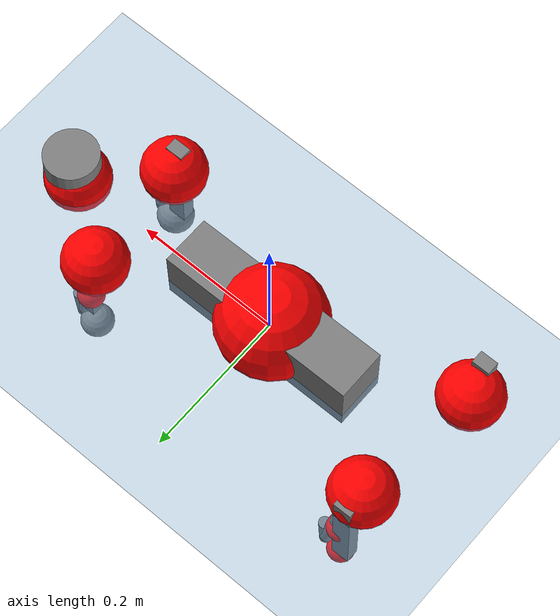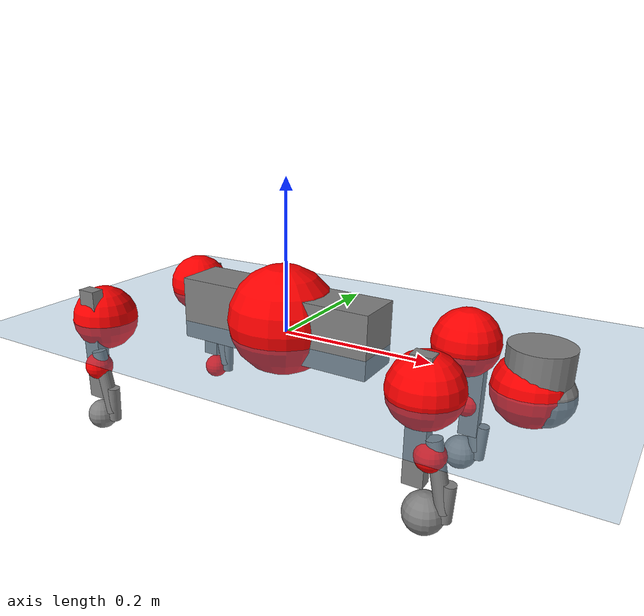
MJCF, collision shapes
<mujoco model="go2">
  <compiler angle="radian" assetdir="assets" balanceinertia="true" inertiafromgeom="false"/>

  <option timestep="0.005" density="1.2" viscosity="2e-05"/>

  <size nkey="1"/>

  <visual>
    <quality shadowsize="8192"/>
    <map shadowclip="0.5"/>
  </visual>

  <default>
    <default class="/">
      <geom contype="0" conaffinity="0" group="1" solref="-1000 -80"/>
      <site size="0.01 0.005 0.005" group="5"/>
      <general forcelimited="true" biastype="affine" gainprm="20" biasprm="0 -20 -0.5"/>
      <default class="go2">
        <joint armature="0.01" damping="0.01" frictionloss="0.2"/>
        <geom condim="1" margin="0.001"/>
        <default class="visual">
          <geom type="mesh" group="2"/>
        </default>
        <default class="collision">
          <geom group="3"/>
          <default class="foot">
            <geom size="0.022 0 0" condim="6" priority="1" friction="0.8 0.02 0.01" solimp="0.015 1 0.022"/>
          </default>
        </default>
        <default class="reward_collision_sphere">
          <geom group="5" rgba="1 0 0 1"/>
        </default>
      </default>
    </default>
  </default>

  <asset>
    <texture type="skybox" colorspace="auto" name="//unnamed_texture_0" builtin="gradient" rgb1="0.95 0.95 0.95" rgb2="0.95 0.95 0.95" width="100" height="600"/>
    <texture type="2d" colorspace="auto" name="texplane" builtin="checker" rgb1="0.345 0.575 0.748" rgb2="0.345 0.575 0.748" markrgb="1 1 1" width="512" height="512"/>
    <material name="MatPlane" class="/" texture="texplane" texuniform="true" texrepeat="2 2" specular="0.9"/>
    <material name="metal" class="/" rgba="0.9 0.95 0.95 1"/>
    <material name="black" class="/" rgba="0 0 0 1"/>
    <material name="white" class="/"/>
    <material name="gray" class="/" rgba="0.671705 0.692426 0.77427 1"/>
    <mesh name="base_0" class="/" file="base_0.obj"/>
    <mesh name="base_1" class="/" file="base_1.obj"/>
    <mesh name="base_2" class="/" file="base_2.obj"/>
    <mesh name="base_3" class="/" file="base_3.obj"/>
    <mesh name="base_4" class="/" file="base_4.obj"/>
    <mesh name="hip_0" class="/" file="hip_0.obj"/>
    <mesh name="hip_1" class="/" file="hip_1.obj"/>
    <mesh name="thigh_0" class="/" file="thigh_0.obj"/>
    <mesh name="thigh_1" class="/" file="thigh_1.obj"/>
    <mesh name="thigh_mirror_0" class="/" file="thigh_mirror_0.obj"/>
    <mesh name="thigh_mirror_1" class="/" file="thigh_mirror_1.obj"/>
    <mesh name="calf_0" class="/" file="calf_0.obj"/>
    <mesh name="calf_1" class="/" file="calf_1.obj"/>
    <mesh name="calf_mirror_0" class="/" file="calf_mirror_0.obj"/>
    <mesh name="calf_mirror_1" class="/" file="calf_mirror_1.obj"/>
    <mesh name="foot" class="/" file="foot.obj"/>
  </asset>

  <worldbody>
    <geom name="floor" class="/" size="100 100 0.125" type="plane" group="0" material="MatPlane"/>
    <light name="toplight_shadow" class="/" pos="0 0 5" dir="0.0990148 0.0990148 -0.990148" type="directional" ambient="0.04 0.04 0.04" diffuse="0.55 0.55 0.55" specular="0.12 0.12 0.12"/>
    <light name="toplight_fill" class="/" pos="0 0 5" dir="0.0990148 0.0990148 -0.990148" type="directional" castshadow="false" ambient="0.04 0.04 0.04" diffuse="0.3 0.3 0.3" specular="0.08 0.08 0.08"/>
    <body name="trunk" childclass="go2" pos="-0.00423594 -0.000822257 0.0166443" quat="0.999969 0.00368747 0.00683539 0.00083752">
      <inertial pos="0.0206931 -0.0137845 0.00141365" quat="0.0599391 0.692499 -0.039366 0.717846" mass="2.45583" diaginertia="0.170328 0.0146957 9.09059e-05"/>
      <joint name="//unnamed_joint_0" type="free" armature="0" damping="0" frictionloss="0"/>
      <geom name="//unnamed_geom_1" class="visual" material="black" mesh="base_0"/>
      <geom name="//unnamed_geom_2" class="visual" material="black" mesh="base_1"/>
      <geom name="//unnamed_geom_3" class="visual" material="black" mesh="base_2"/>
      <geom name="//unnamed_geom_4" class="visual" material="white" mesh="base_3"/>
      <geom name="//unnamed_geom_5" class="visual" material="gray" mesh="base_4"/>
      <geom name="trunk_1" class="collision" size="0.137627 0.0342056 0.0417052" type="box"/>
      <geom name="trunk_2" class="collision" size="0.0365835 0.0329251" pos="0.325207 0 0.0034513" type="cylinder"/>
      <geom name="trunk_3" class="collision" size="0.0343885" pos="0.334335 0 -0.0207078"/>
      <geom name="//unnamed_geom_9" class="reward_collision_sphere" size="0.073167"/>
      <geom name="//unnamed_geom_10" class="reward_collision_sphere" size="0.0439002" pos="0.319501 0 -0.0155309"/>
      <site name="imu" pos="-0.0560209 -0.0534725 0.0806374" size="0.0073167"/>
      <camera name="track" pos="0 -1.41761 0" quat="0.707107 0.707107 0 0" mode="trackcom"/>
      <camera name="ego_camera" pos="0.356016 0 0.0155309" quat="-0.5 -0.5 0.5 0.5"/>
      <body name="FL_hip" pos="0.22118 0.0253018 -0.00833286" quat="0.999999 0.000213672 0.000926089 0.00101779">
        <inertial pos="0.00892979 0.000991478 0.0161508" quat="0.442902 0.557628 0.487558 0.50515" mass="0.299637" diaginertia="0.00163057 0.000131024 2.63764e-06"/>
        <joint name="FL_hip_joint" pos="0 0 0" axis="0.997406 -0.0436851 0.0572105" stiffness="0.0626902" range="-1.02312 0.844882" armature="0.00763848" damping="0.0712292" frictionloss="0.0729402"/>
        <geom name="//unnamed_geom_11" class="visual" material="metal" mesh="hip_0"/>
        <geom name="//unnamed_geom_12" class="visual" material="gray" mesh="hip_1"/>
        <geom name="//unnamed_geom_13" class="collision" size="0.0336568 0.0146334" pos="0 0.0567043 0" quat="0.707107 0.707107 0 0" type="cylinder"/>
        <geom name="//unnamed_geom_14" class="reward_collision_sphere" size="0.0439002" pos="0 0.0496162 0"/>
        <body name="FL_thigh" pos="0.0135242 0.0587266 -0.0130481" quat="1 0.000413255 2.23226e-05 8.77051e-05">
          <inertial pos="-0.00385628 -0.0168271 -0.00844373" quat="0.845013 0.0910278 0.000876717 0.52694" mass="0.492989" diaginertia="0.0126466 0.00124259 5.94702e-06"/>
          <joint name="FL_thigh_joint" pos="0 0 0" axis="-0.00216015 0.999997 0.000709933" stiffness="0.00287971" range="-1.3642 3.52175" armature="0.0112547" damping="0" frictionloss="0.142528"/>
          <geom name="//unnamed_geom_15" class="visual" material="metal" mesh="thigh_0"/>
          <geom name="//unnamed_geom_16" class="visual" material="gray" mesh="thigh_1"/>
          <geom name="//unnamed_geom_17" class="collision" size="0.0779228 0.00896296 0.0124384" pos="0 0 -0.0367564" quat="0.707107 0 0.707107 0" type="box"/>
          <body name="FL_calf" pos="-0.00646556 0.00152864 -0.0733426" quat="1 -0.000588588 0.000218544 -0.000230321">
            <inertial pos="0.0249893 0.0155197 -0.0486931" quat="0.714403 0.00790278 0.0054194 0.699669" mass="0.0958694" diaginertia="0.0035342 0.000256859 2.70626e-07"/>
            <joint name="FL_calf_joint" pos="0 0 0" axis="-0.00940807 0.999687 -0.023173" stiffness="0.00617758" range="-2.37172 -1.05144" armature="0.0103043" damping="0.0361949" frictionloss="0.0216406"/>
            <geom name="//unnamed_geom_18" class="visual" material="gray" mesh="calf_0"/>
            <geom name="//unnamed_geom_19" class="visual" material="black" mesh="calf_1"/>
            <geom name="FL_calf0" class="collision" size="0.00878004 0.0439002" pos="0.00912861 0 -0.0207078" quat="0.994493 0 -0.104807 0" type="cylinder"/>
            <geom name="//unnamed_geom_21" class="collision" size="0.00804837 0.0237793" pos="0.0228215 0 -0.0510793" quat="0.999688 0 0.0249974 0" type="cylinder"/>
            <geom name="//unnamed_geom_22" class="visual" pos="0 0 -0.0735128" quat="1 0 0 0" material="black" mesh="foot"/>
            <geom name="FL_foot" class="foot" size="0.0224322" pos="-0.00228215 0 -0.0735128"/>
            <geom name="//unnamed_geom_24" class="reward_collision_sphere" size="0.0182917"/>
            <geom name="//unnamed_geom_25" class="reward_collision_sphere" size="0.0182917" pos="-0.00228215 0 -0.0735128"/>
            <site name="FL_foot" class="foot" pos="-0.00228215 0 -0.0735128" size="0.0073167"/>
          </body>
        </body>
      </body>
      <body name="FR_hip" pos="0.231088 -0.0325281 -0.00647259" quat="0.999964 0.00839283 0.000236132 -0.00150347">
        <inertial pos="0.00215127 -0.00341313 0.00299999" quat="0.48225 0.575323 0.463267 0.47098" mass="0.22839" diaginertia="0.0017442 0.000118807 2.41759e-06"/>
        <joint name="FR_hip_joint" pos="0 0 0" axis="0.998689 -0.0193232 0.0473935" stiffness="0.0697973" range="-0.716684 1.24794" armature="0.00529933" damping="0.0651492" frictionloss="0.0624221"/>
        <geom name="//unnamed_geom_26" class="visual" pos="0 3.16817e-09 1.35889e-07" quat="4.63268e-05 1 0 0" material="metal" mesh="hip_0"/>
        <geom name="//unnamed_geom_27" class="visual" pos="0 5.13598e-09 -3.36106e-07" quat="4.63268e-05 1 0 0" material="gray" mesh="hip_1"/>
        <geom name="//unnamed_geom_28" class="collision" size="0.0336568 0.0146334" pos="0 -0.0567043 0" quat="0.707107 0.707107 0 0" type="cylinder"/>
        <geom name="//unnamed_geom_29" class="reward_collision_sphere" size="0.0439002" pos="0 -0.0496162 0"/>
        <body name="FR_thigh" pos="-0.0014841 -0.0569625 0.00306541" quat="0.99999 0.00425469 -0.000197837 0.00149695">
          <inertial pos="0.0051847 0.0143806 -0.00390372" quat="0.536379 0.00748381 0.0931367 0.838789" mass="0.376953" diaginertia="0.0111487 0.00122041 3.81573e-06"/>
          <joint name="FR_thigh_joint" pos="0 0 0" axis="4.41939e-05 -1 -0.000491985" range="-3.48969 1.78166" armature="0.0110507" damping="0.0903882" frictionloss="0.243933"/>
          <geom name="//unnamed_geom_30" class="visual" material="metal" mesh="thigh_mirror_0"/>
          <geom name="//unnamed_geom_31" class="visual" material="gray" mesh="thigh_mirror_1"/>
          <geom name="//unnamed_geom_32" class="collision" size="0.0779228 0.00896296 0.0124384" pos="0 0 -0.0367564" quat="0.707107 0 0.707107 0" type="box"/>
          <body name="FR_calf" pos="0.0164105 -0.00324031 -0.0734017" quat="0.999996 -0.000793676 -0.00196133 -0.00187364">
            <inertial pos="0.0136323 0.0157263 -0.0622171" quat="0.673241 -0.0605126 0.0553252 0.734863" mass="0.11955" diaginertia="0.00356403 0.000255112 3.5419e-07"/>
            <joint name="FR_calf_joint" pos="0 0 0" axis="0.000567621 -0.999986 -0.00517716" stiffness="0.0294413" range="0.88032 2.80717" armature="0.00832503" damping="0.0647856" frictionloss="0.216377"/>
            <geom name="//unnamed_geom_33" class="visual" material="gray" mesh="calf_mirror_0"/>
            <geom name="//unnamed_geom_34" class="visual" material="black" mesh="calf_mirror_1"/>
            <geom name="FR_calf0" class="collision" size="0.00951171 0.0439002" pos="0.0114108 0 -0.0207078" quat="0.995004 0 -0.0998334 0" type="cylinder"/>
            <geom name="//unnamed_geom_36" class="collision" size="0.00804837 0.0237793" pos="0.0228215 0 -0.0510793" quat="0.999688 0 0.0249974 0" type="cylinder"/>
            <geom name="//unnamed_geom_37" class="visual" pos="0 0 -0.0735128" quat="1 0 0 0" material="black" mesh="foot"/>
            <geom name="FR_foot" class="foot" size="0.025171" pos="-0.00228215 0 -0.0735128"/>
            <geom name="//unnamed_geom_39" class="reward_collision_sphere" size="0.0182917"/>
            <geom name="//unnamed_geom_40" class="reward_collision_sphere" size="0.0182917" pos="-0.00228215 0 -0.0735128"/>
            <site name="FR_foot" class="foot" pos="-0.00228215 0 -0.0735128" size="0.0073167"/>
          </body>
        </body>
      </body>
      <body name="RL_hip" pos="-0.218576 0.0448899 -0.0121924" quat="0.999994 0.00231203 0.00231419 0.00150922">
        <inertial pos="0.0133274 0.0164737 0.0166868" quat="0.538232 0.490511 0.494066 0.474978" mass="0.315534" diaginertia="0.00216735 0.000108079 3.09759e-06"/>
        <joint name="RL_hip_joint" pos="0 0 0" axis="-0.997394 -0.0563522 -0.0450477" range="-0.75621 0.739383" armature="0.00217196" damping="0.00150762" frictionloss="0.14871"/>
        <geom name="//unnamed_geom_41" class="visual" pos="-6.93395e-09 0 -1.35921e-06" quat="4.63268e-05 0 1 0" material="metal" mesh="hip_0"/>
        <geom name="//unnamed_geom_42" class="visual" pos="-1.12408e-08 0 -1.20543e-06" quat="4.63268e-05 0 1 0" material="gray" mesh="hip_1"/>
        <geom name="//unnamed_geom_43" class="collision" size="0.0336568 0.0146334" pos="0 0.0567043 0" quat="0.707107 0.707107 0 0" type="cylinder"/>
        <geom name="//unnamed_geom_44" class="reward_collision_sphere" size="0.0439002" pos="0 0.0496162 0"/>
        <body name="RL_thigh" pos="-0.0017388 0.0820885 -0.0162835" quat="0.99998 0.00018138 0.00585654 0.00221427">
          <inertial pos="-0.0216819 -0.00325881 0.00596553" quat="0.829923 0.0851656 -0.0179248 0.551048" mass="0.361823" diaginertia="0.0071866 0.000765073 2.84007e-06"/>
          <joint name="RL_thigh_joint" pos="0 0 0" axis="-0.00262091 0.996271 -0.0862355" range="-0.295561 4.48313" armature="0.00563364" damping="0.093133" frictionloss="0.079721"/>
          <geom name="//unnamed_geom_45" class="visual" material="metal" mesh="thigh_0"/>
          <geom name="//unnamed_geom_46" class="visual" material="gray" mesh="thigh_1"/>
          <geom name="//unnamed_geom_47" class="collision" size="0.0779228 0.00896296 0.0124384" pos="0 0 -0.0367564" quat="0.707107 0 0.707107 0" type="box"/>
          <body name="RL_calf" pos="0.0109097 -0.00534045 -0.0615428" quat="0.999978 -0.00221221 -0.00405091 0.0047556">
            <inertial pos="0.023474 -0.0124913 -0.0319031" quat="0.705623 0.0514811 -0.0613145 0.70405" mass="0.105434" diaginertia="0.00332348 0.000339315 2.67279e-07"/>
            <joint name="RL_calf_joint" pos="0 0 0" axis="0.00119434 0.999991 -0.00418264" stiffness="0.0251984" range="-2.82246 -0.482511" armature="0.00213324" damping="0.0871687" frictionloss="0.149017"/>
            <geom name="//unnamed_geom_48" class="visual" material="gray" mesh="calf_0"/>
            <geom name="//unnamed_geom_49" class="visual" material="black" mesh="calf_1"/>
            <geom name="RL_calf0" class="collision" size="0.00951171 0.0439002" pos="0.0114108 0 -0.0207078" quat="0.995004 0 -0.0998334 0" type="cylinder"/>
            <geom name="//unnamed_geom_51" class="collision" size="0.00804837 0.0237793" pos="0.0228215 0 -0.0510793" quat="0.999688 0 0.0249974 0" type="cylinder"/>
            <geom name="//unnamed_geom_52" class="visual" pos="0 0 -0.0735128" quat="1 0 0 0" material="black" mesh="foot"/>
            <geom name="RL_foot" class="foot" size="0.0111969" pos="-0.00228215 0 -0.0735128"/>
            <geom name="//unnamed_geom_54" class="reward_collision_sphere" size="0.0182917"/>
            <geom name="//unnamed_geom_55" class="reward_collision_sphere" size="0.0182917" pos="-0.00228215 0 -0.0735128"/>
            <site name="RL_foot" class="foot" pos="-0.00228215 0 -0.0735128" size="0.0073167"/>
          </body>
        </body>
      </body>
      <body name="RR_hip" pos="-0.238294 -0.0364088 -0.0186557" quat="1 0.000712134 0.000314662 -4.76939e-05">
        <inertial pos="0.0197643 0.00952014 -0.000225482" quat="0.464435 0.454842 0.547795 0.52663" mass="0.25729" diaginertia="0.00108459 8.24874e-05 1.62684e-06"/>
        <joint name="RR_hip_joint" pos="0 0 0" axis="-0.996066 -0.0818329 -0.0339986" range="-0.862157 1.0289" armature="0.00759302" damping="0.016648" frictionloss="0.0181757"/>
        <geom name="//unnamed_geom_56" class="visual" pos="6.91899e-09 3.16817e-09 -1.4951e-06" quat="2.14617e-09 4.63268e-05 4.63268e-05 -1" material="metal" mesh="hip_0"/>
        <geom name="//unnamed_geom_57" class="visual" pos="1.12778e-08 5.13598e-09 -8.69323e-07" quat="2.14617e-09 4.63268e-05 4.63268e-05 -1" material="gray" mesh="hip_1"/>
        <geom name="//unnamed_geom_58" class="collision" size="0.0336568 0.0146334" pos="0 -0.0567043 0" quat="0.707107 0.707107 0 0" type="cylinder"/>
        <geom name="//unnamed_geom_59" class="reward_collision_sphere" size="0.0439002" pos="0 -0.0496162 0"/>
        <body name="RR_thigh" pos="0.00418343 -0.074743 0.00613344" quat="0.999998 0.00173485 -0.00118466 0.000253115">
          <inertial pos="-0.012994 0.0259305 0.00366576" quat="0.560071 -0.0644596 0.0483258 0.824518" mass="0.59774" diaginertia="0.0102908 0.00115667 4.33494e-06"/>
          <joint name="RR_thigh_joint" pos="0 0 0" axis="0.0373036 -0.999009 -0.0242785" range="-4.56077 0.785673" armature="0.00754271" damping="0.0414218" frictionloss="0.194079"/>
          <geom name="//unnamed_geom_60" class="visual" material="metal" mesh="thigh_mirror_0"/>
          <geom name="//unnamed_geom_61" class="visual" material="gray" mesh="thigh_mirror_1"/>
          <geom name="//unnamed_geom_62" class="collision" size="0.0779228 0.00896296 0.0124384" pos="0 0 -0.0367564" quat="0.707107 0 0.707107 0" type="box"/>
          <body name="RR_calf" pos="0.0158177 -0.0129262 -0.0609225" quat="0.99996 -0.00423249 -0.00439788 -0.00647628">
            <inertial pos="-0.000172972 1.12364e-05 -0.0493107" quat="0.698619 -0.0382327 0.0701986 0.711015" mass="0.0870989" diaginertia="0.00263904 0.000197612 2.68535e-07"/>
            <joint name="RR_calf_joint" pos="0 0 0" axis="0.0346175 -0.996334 -0.0782305" stiffness="0.0787292" range="0.547186 2.8496" armature="0.00689463" damping="0.0829699" frictionloss="0.195165"/>
            <geom name="//unnamed_geom_63" class="visual" material="gray" mesh="calf_mirror_0"/>
            <geom name="//unnamed_geom_64" class="visual" material="black" mesh="calf_mirror_1"/>
            <geom name="RR_calf0" class="collision" size="0.00951171 0.0439002" pos="0.0114108 0 -0.0207078" quat="0.995004 0 -0.0998334 0" type="cylinder"/>
            <geom name="//unnamed_geom_66" class="collision" size="0.00804837 0.0237793" pos="0.0228215 0 -0.0510793" quat="0.999688 0 0.0249974 0" type="cylinder"/>
            <geom name="//unnamed_geom_67" class="visual" pos="0 0 -0.0735128" quat="1 0 0 0" material="black" mesh="foot"/>
            <geom name="RR_foot" class="foot" size="0.0200898" pos="-0.00228215 0 -0.0735128"/>
            <geom name="//unnamed_geom_69" class="reward_collision_sphere" size="0.0182917"/>
            <geom name="//unnamed_geom_70" class="reward_collision_sphere" size="0.0182917" pos="-0.00228215 0 -0.0735128"/>
            <site name="RR_foot" class="foot" pos="-0.00228215 0 -0.0735128" size="0.0073167"/>
          </body>
        </body>
      </body>
    </body>
  </worldbody>

  <contact>
    <pair class="/" geom1="floor" geom2="FL_foot" name="//unnamed_contact_0"/>
    <pair class="/" geom1="floor" geom2="FR_foot" name="//unnamed_contact_1"/>
    <pair class="/" geom1="floor" geom2="RL_foot" name="//unnamed_contact_2"/>
    <pair class="/" geom1="floor" geom2="RR_foot" name="//unnamed_contact_3"/>
  </contact>

  <actuator>
    <general name="FL_hip" class="/" joint="FL_hip_joint" forcerange="-18.3878 18.3878" gainprm="12.6214" biasprm="0 -12.6214 -0.426554"/>
    <general name="FL_thigh" class="/" joint="FL_thigh_joint" forcerange="-13.9437 13.9437" gainprm="12.6214" biasprm="0 -12.6214 -0.426554"/>
    <general name="FL_calf" class="/" joint="FL_calf_joint" forcerange="-20.1489 20.1489" gainprm="12.6214" biasprm="0 -12.6214 -0.426554"/>
    <general name="FR_hip" class="/" joint="FR_hip_joint" forcerange="-20.5322 20.5322" gainprm="12.6214" biasprm="0 -12.6214 -0.426554"/>
    <general name="FR_thigh" class="/" joint="FR_thigh_joint" forcerange="-10.7096 10.7096" gainprm="12.6214" biasprm="0 -12.6214 -0.426554"/>
    <general name="FR_calf" class="/" joint="FR_calf_joint" forcerange="-34.6827 34.6827" gainprm="12.6214" biasprm="0 -12.6214 -0.426554"/>
    <general name="RL_hip" class="/" joint="RL_hip_joint" forcerange="-18.7156 18.7156" gainprm="12.6214" biasprm="0 -12.6214 -0.426554"/>
    <general name="RL_thigh" class="/" joint="RL_thigh_joint" forcerange="-28.0693 28.0693" gainprm="12.6214" biasprm="0 -12.6214 -0.426554"/>
    <general name="RL_calf" class="/" joint="RL_calf_joint" forcerange="-14.4023 14.4023" gainprm="12.6214" biasprm="0 -12.6214 -0.426554"/>
    <general name="RR_hip" class="/" joint="RR_hip_joint" forcerange="-17.1659 17.1659" gainprm="12.6214" biasprm="0 -12.6214 -0.426554"/>
    <general name="RR_thigh" class="/" joint="RR_thigh_joint" forcerange="-22.3918 22.3918" gainprm="12.6214" biasprm="0 -12.6214 -0.426554"/>
    <general name="RR_calf" class="/" joint="RR_calf_joint" forcerange="-19.6365 19.6365" gainprm="12.6214" biasprm="0 -12.6214 -0.426554"/>
  </actuator>

  <sensor>
    <gyro site="imu" name="imu_angular_velocity"/>
    <velocimeter site="imu" name="imu_linear_velocity"/>
    <framelinvel objtype="site" objname="FL_foot" name="FL_foot_global_linear_velocity"/>
    <framelinvel objtype="site" objname="FR_foot" name="FR_foot_global_linear_velocity"/>
    <framelinvel objtype="site" objname="RL_foot" name="RL_foot_global_linear_velocity"/>
    <framelinvel objtype="site" objname="RR_foot" name="RR_foot_global_linear_velocity"/>
  </sensor>

  <keyframe>
    <key name="home" qpos="0 0 0.325 1 0 0 0 0.1 0.8 -1.5 -0.1 -0.8 1.5 -0.1 0.8 -1.5 0.1 -0.8 1.5"/>
  </keyframe>
</mujoco>
